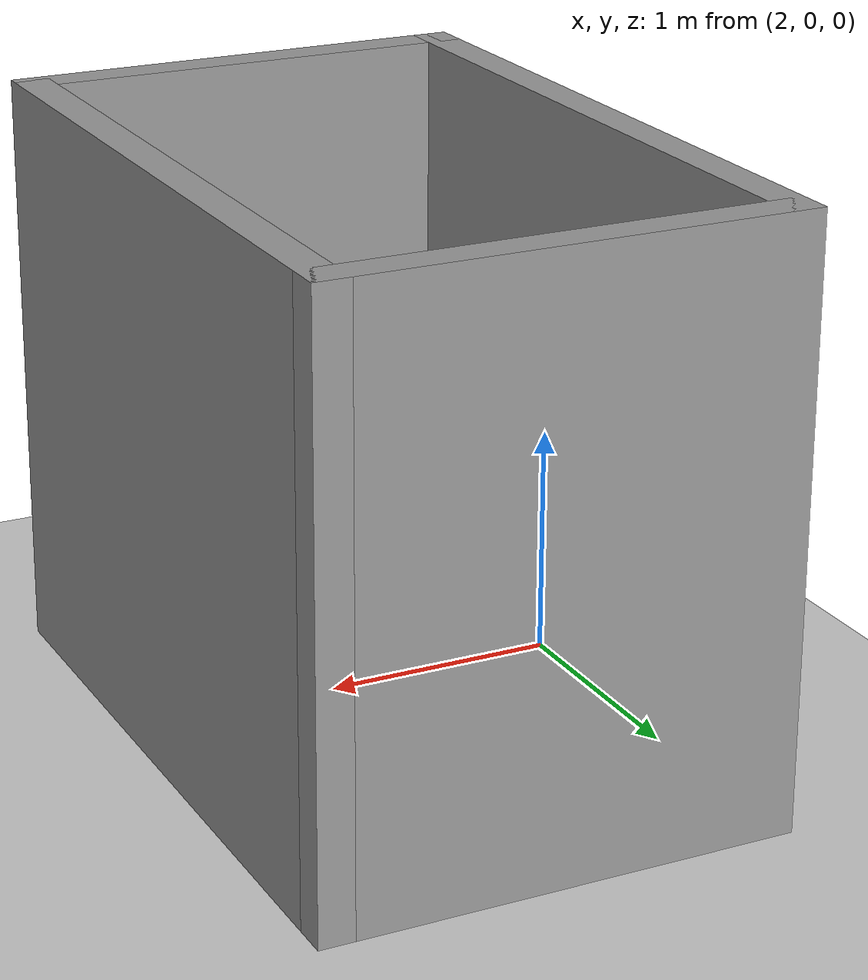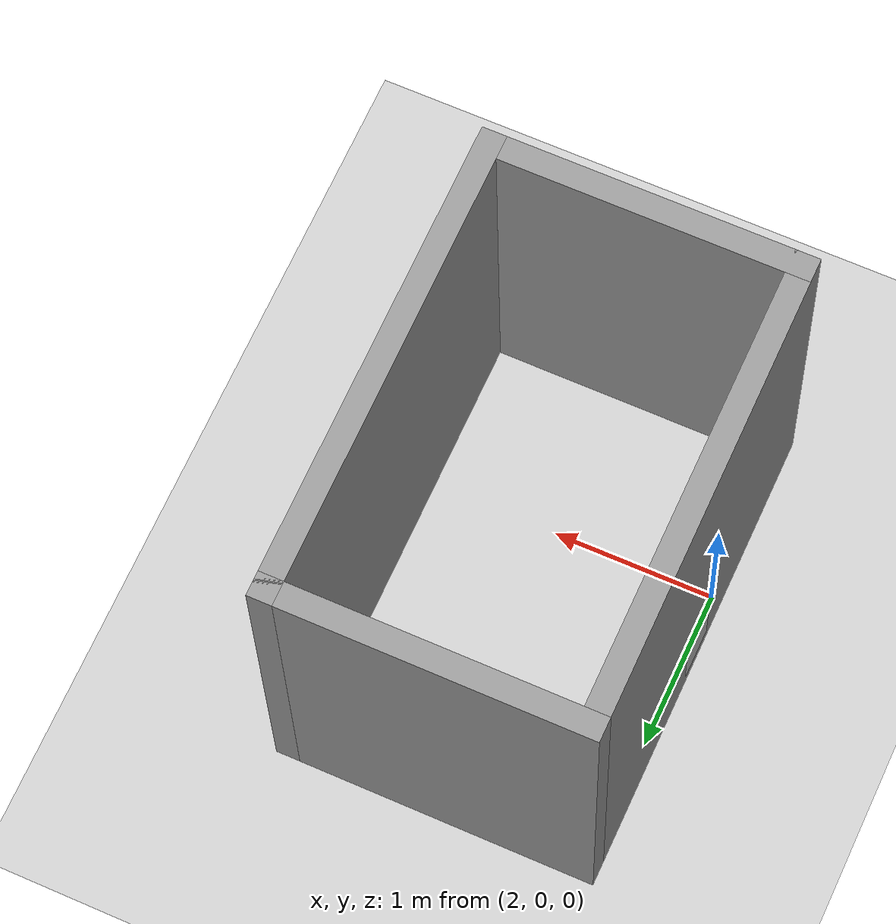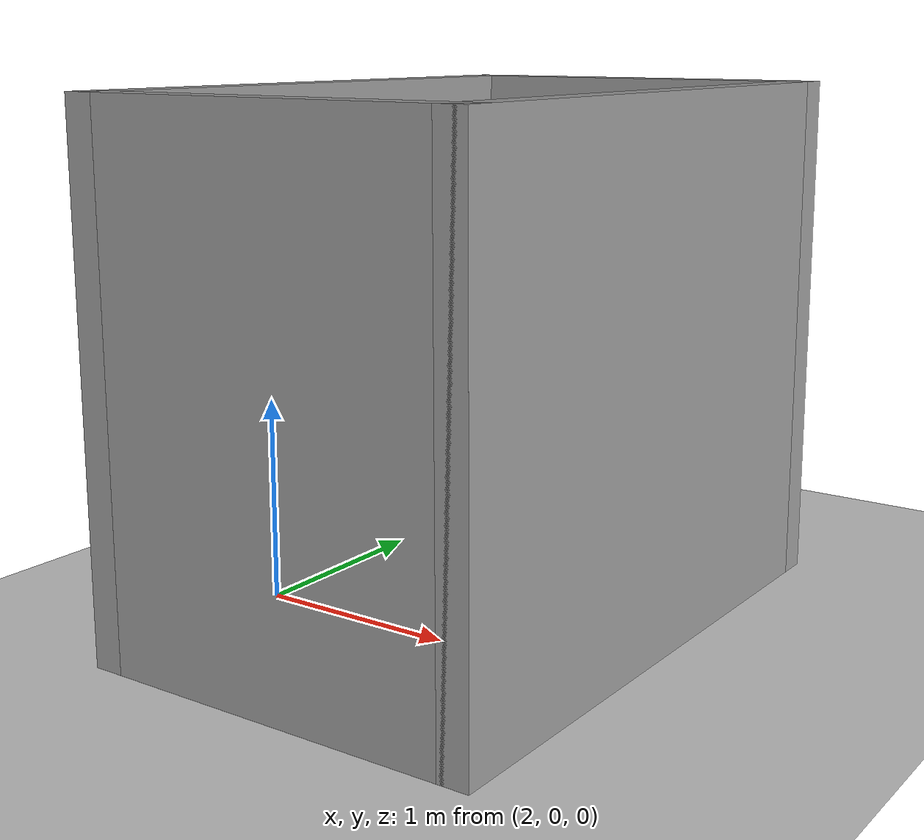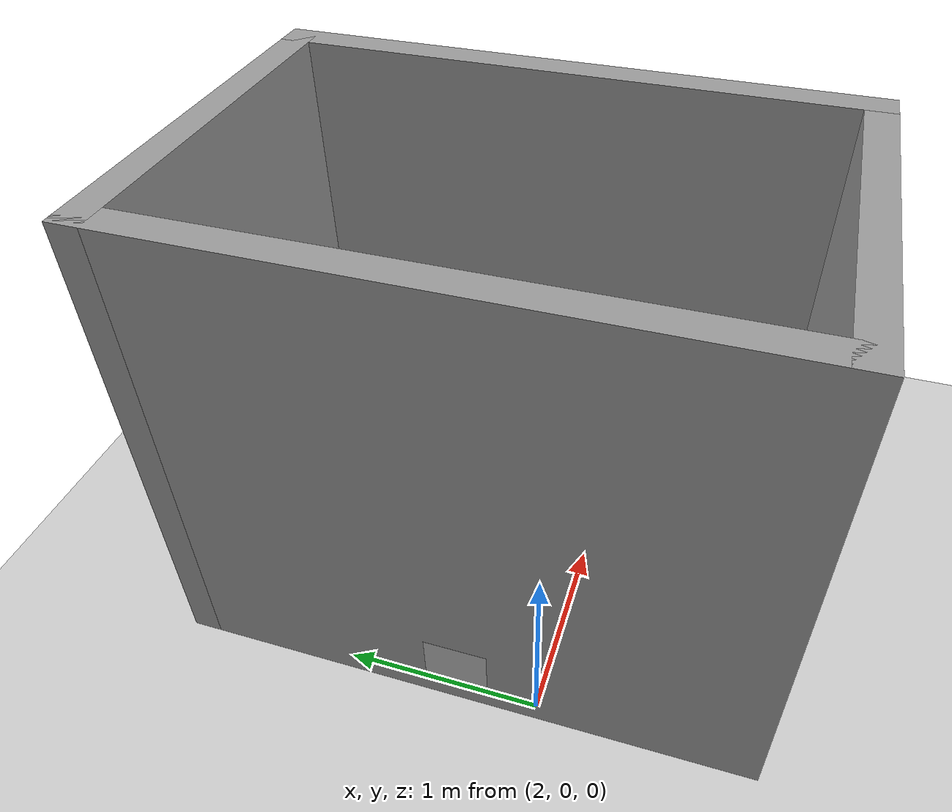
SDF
<sdf version="1.7">
 <world name="contructionSite">
  <light name="sun" type="directional">
   <pose>0 0 10 0 -0 0</pose>
   <diffuse>0.8 0.8 0.8 1</diffuse>
   <specular>0.2 0.2 0.2 1</specular>
   <attenuation>
    <range>1000</range>
    <constant>0.9</constant>
    <linear>0.01</linear>
    <quadratic>0.001</quadratic>
   </attenuation>
   <direction>-0.5 0.1 -0.9</direction>
   <spot><inner_angle>0</inner_angle><outer_angle>0</outer_angle><falloff>0</falloff></spot>
  </light>
  <model name="ground_plane">
   <static>1</static>
   <link name="link">
    <collision name="collision">
     <geometry><plane><normal>0 0 1</normal><size>100 100</size></plane></geometry>
     <surface><friction><ode><mu>100</mu><mu2>50</mu2></ode></friction></surface>
    </collision>
    <visual name="visual">
     <cast_shadows>0</cast_shadows>
     <geometry><plane><normal>0 0 1</normal><size>100 100</size></plane></geometry>
     <material>
      <script><uri>file://media/materials/scripts/gazebo.material</uri><name>Gazebo/Grey</name></script>
     </material>
    </visual>
   </link>
  </model>
  <gravity>0 0 -9.8</gravity>
  <magnetic_field>6e-06 2.3e-05 -4.2e-05</magnetic_field>
  <atmosphere type="adiabatic"/>
  <physics type="ode">
   <max_step_size>0.001</max_step_size>
   <real_time_factor>1</real_time_factor>
   <real_time_update_rate>1000</real_time_update_rate>
  </physics>
  <scene><ambient>0.4 0.4 0.4 1</ambient><background>0.7 0.7 0.7 1</background><shadows>1</shadows></scene>
  <spherical_coordinates>
   <surface_model>EARTH_WGS84</surface_model>
   <latitude_deg>0</latitude_deg>
   <longitude_deg>0</longitude_deg>
   <elevation>0</elevation>
   <heading_deg>0</heading_deg>
  </spherical_coordinates>
  <model name="MyWall">
   <pose>4.26916 1.99025 0 0 -0 0</pose>
   <link name="Wall_0">
    <collision name="Wall_0_Collision">
     <geometry><box><size>3 0.15 2.5</size></box></geometry>
     <pose>0 0 1.25 0 -0 0</pose>
    </collision>
    <visual name="Wall_0_visual">
     <pose>0 0 1.25 0 -0 0</pose>
     <geometry><box><size>3 0.15 2.5</size></box></geometry>
     <material>
      <script><uri>file://media/materials/scripts/gazebo.material</uri><name>Gazebo/Grey</name></script>
      <ambient>1 1 1 1</ambient>
     </material>
     <meta><layer>0</layer></meta>
    </visual>
    <pose>-2.2575 -1.5925 0 0 -0 -1.5708</pose>
   </link>
   <link name="Wall_1">
    <collision name="Wall_1_Collision">
     <geometry><box><size>2 0.15 2.5</size></box></geometry>
     <pose>0 0 1.25 0 -0 0</pose>
    </collision>
    <visual name="Wall_1_visual">
     <pose>0 0 1.25 0 -0 0</pose>
     <geometry><box><size>2 0.15 2.5</size></box></geometry>
     <material>
      <script><uri>file://media/materials/scripts/gazebo.material</uri><name>Gazebo/Grey</name></script>
      <ambient>1 1 1 1</ambient>
     </material>
     <meta><layer>0</layer></meta>
    </visual>
    <pose>-1.3325 -3.0175 0 0 -0 0</pose>
   </link>
   <link name="Wall_2">
    <collision name="Wall_2_Collision">
     <geometry><box><size>3 0.15 2.5</size></box></geometry>
     <pose>0 0 1.25 0 -0 0</pose>
    </collision>
    <visual name="Wall_2_visual">
     <pose>0 0 1.25 0 -0 0</pose>
     <geometry><box><size>3 0.15 2.5</size></box></geometry>
     <material>
      <script><uri>file://media/materials/scripts/gazebo.material</uri><name>Gazebo/Grey</name></script>
      <ambient>1 1 1 1</ambient>
     </material>
     <meta><layer>0</layer></meta>
    </visual>
    <pose>-0.4075 -1.5925 0 0 -0 1.5708</pose>
   </link>
   <link name="Wall_3">
    <collision name="Wall_3_Collision">
     <geometry><box><size>2 0.15 2.5</size></box></geometry>
     <pose>0 0 1.25 0 -0 0</pose>
    </collision>
    <visual name="Wall_3_visual">
     <pose>0 0 1.25 0 -0 0</pose>
     <geometry><box><size>2 0.15 2.5</size></box></geometry>
     <material>
      <script><uri>file://media/materials/scripts/gazebo.material</uri><name>Gazebo/Grey</name></script>
      <ambient>1 1 1 1</ambient>
     </material>
     <meta><layer>0</layer></meta>
    </visual>
    <pose>-1.3325 -0.1675 0 0 -0 3.14159</pose>
   </link>
   <link name="grid_link">
    <visual name="grid_visual">
     <geometry><box><size>0.32 0.002 0.32</size></box></geometry>
     <material>
      <script>
       <uri>/home/yuyouling/building_editor_models/MyWall/grid.material</uri>
       <name>ConcreteWithGrid</name>
      </script>
     </material>
    </visual>
    <pose>-2.3316 -1.5925 0.25 0 -0 -1.5708</pose>
   </link>
   <static>1</static>
  </model>
 </world>
</sdf>
